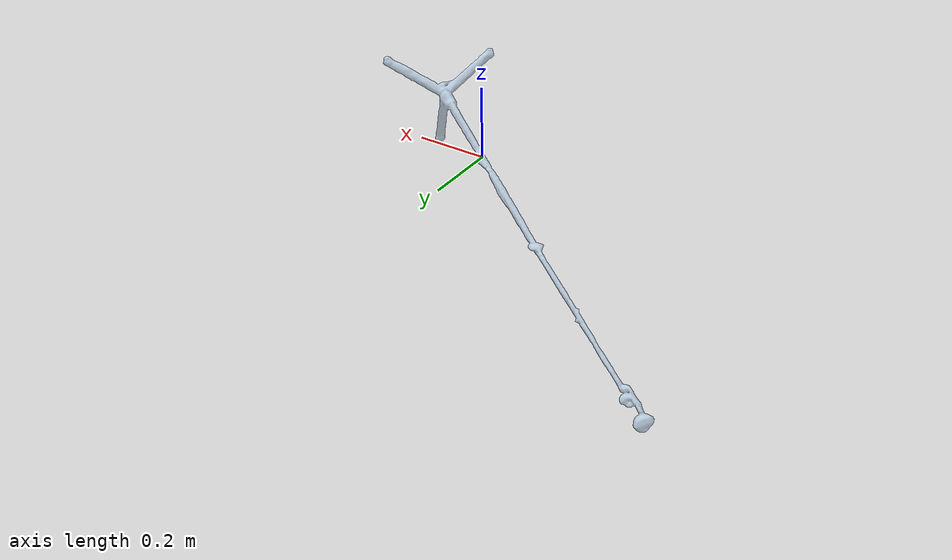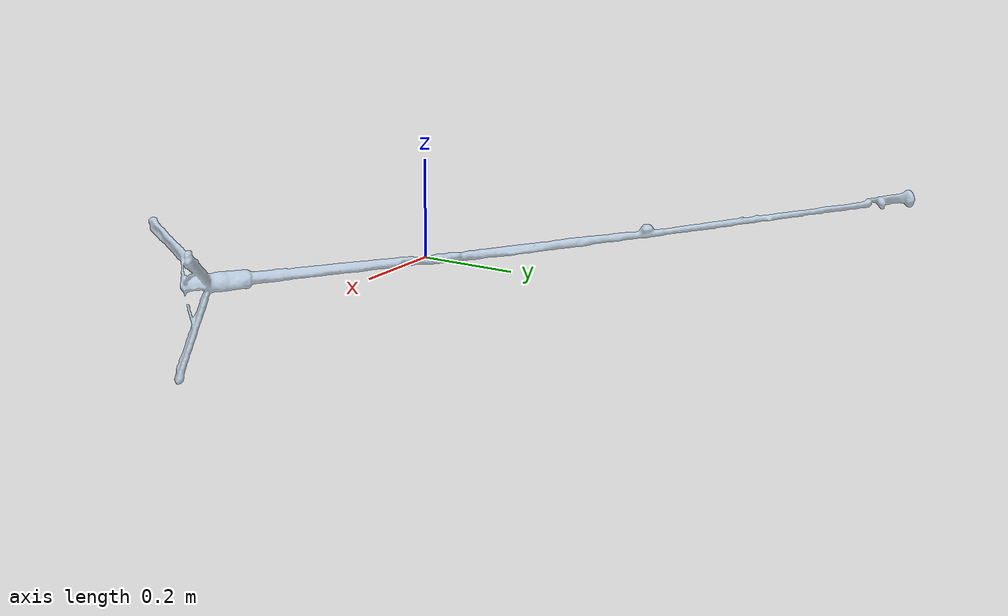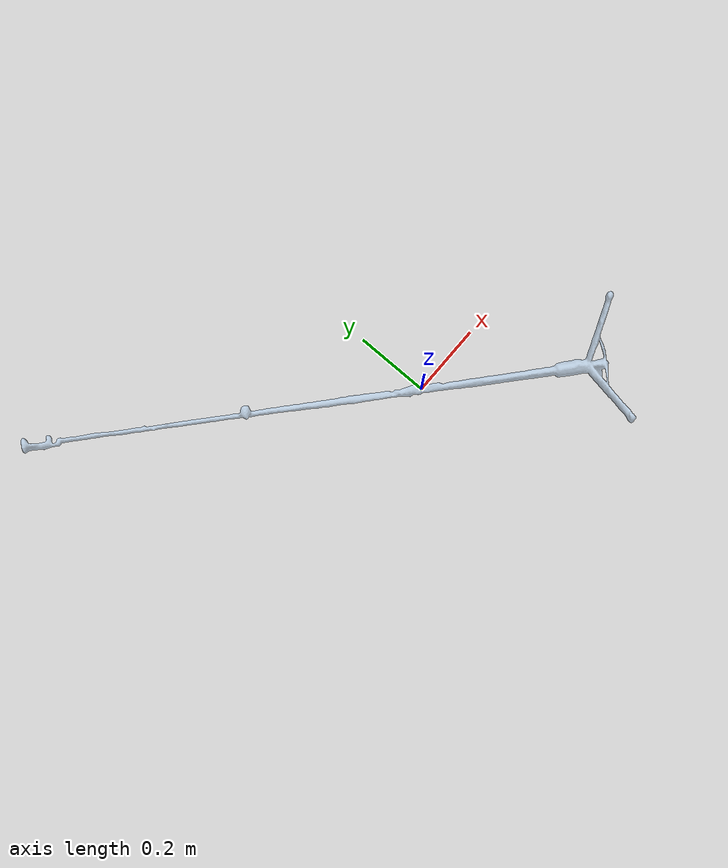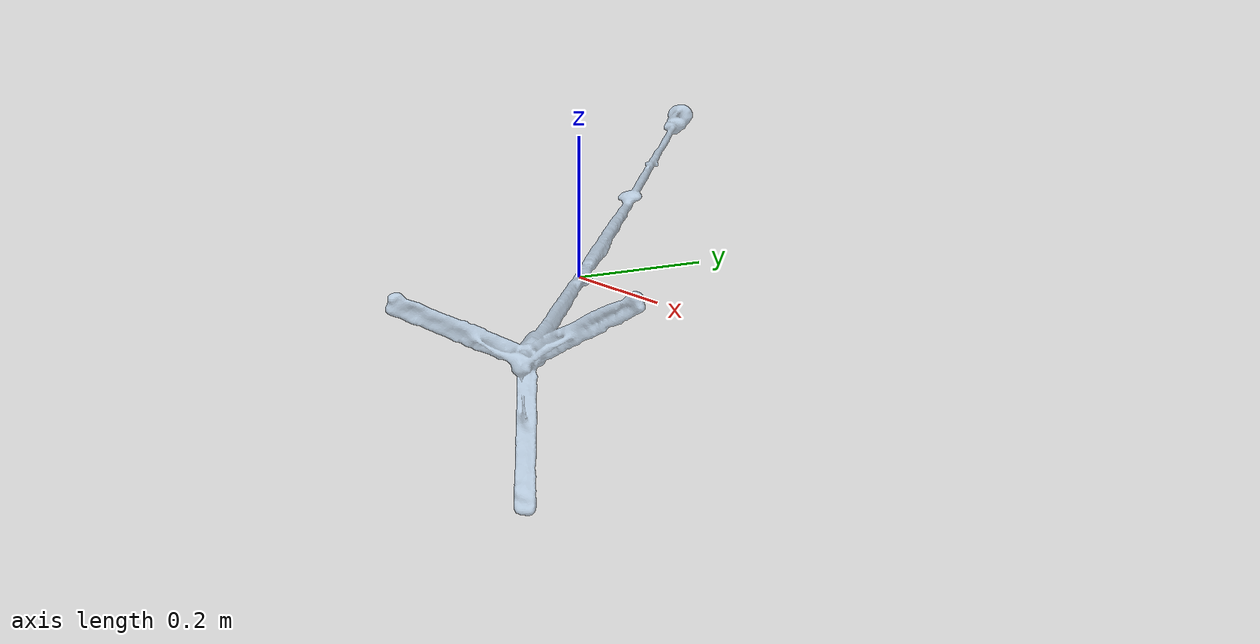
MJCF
<mujoco model="tripod">
    <compiler meshdir="./"/>

    <default>
        <geom friction="0.9 0.5 0.5" rgba="0.7 0.8 0.9 0.7"/>
        <joint damping="0.5"/>
    </default>

    <asset>
        <mesh name="tripod_mesh" file="tripod.obj" scale="1 1 1"/>
    </asset>

    <worldbody>
        <body name="tripod_link">
            <inertial pos="0 0 0" mass="0.1" diaginertia="0.002 0.002 0.002"/>
            <geom name="tripod" type="mesh" mesh="tripod_mesh"
                  pos="0 0 0" quat="1 0 0 0"
                  rgba="0.7 0.8 0.9 0.7"
                  friction="0.9 0.5 0.5"
                  solref="0.02 1"
                  solimp="0.9 0.95 0.001"/>
        </body>
    </worldbody>
</mujoco>
